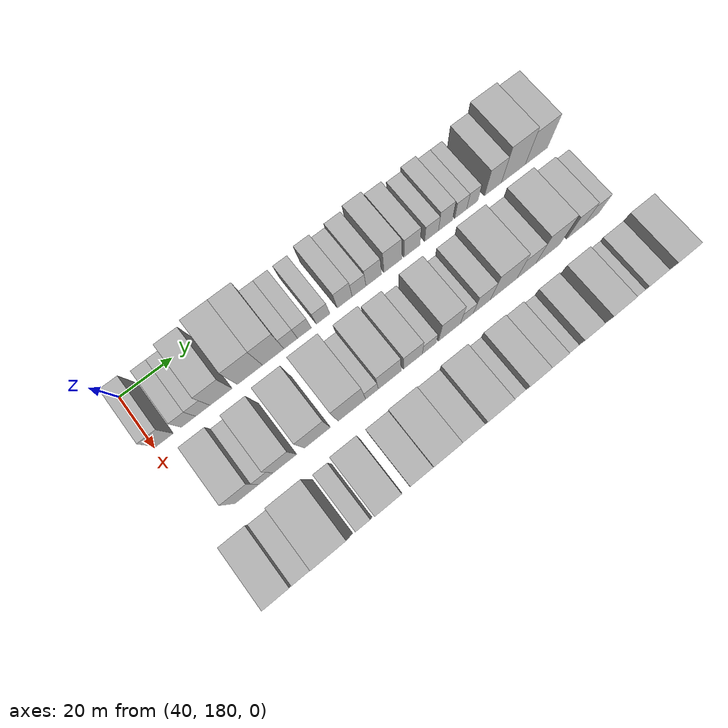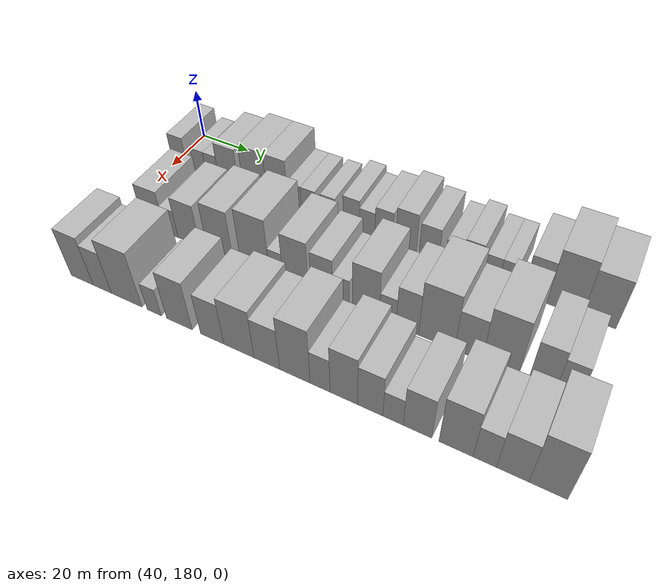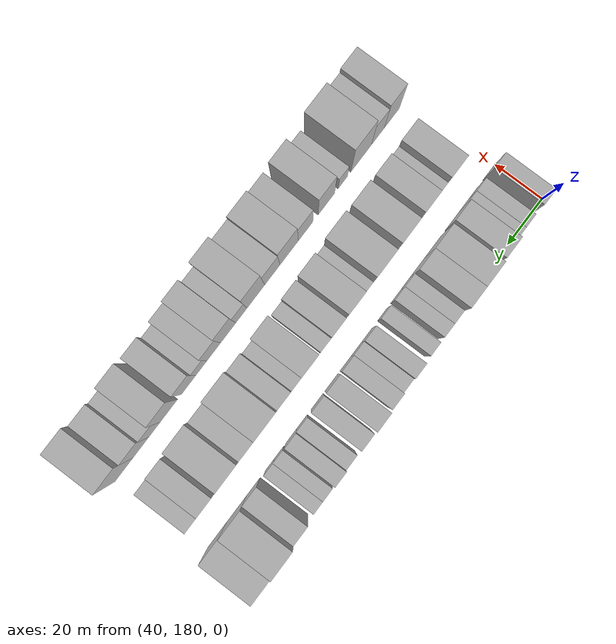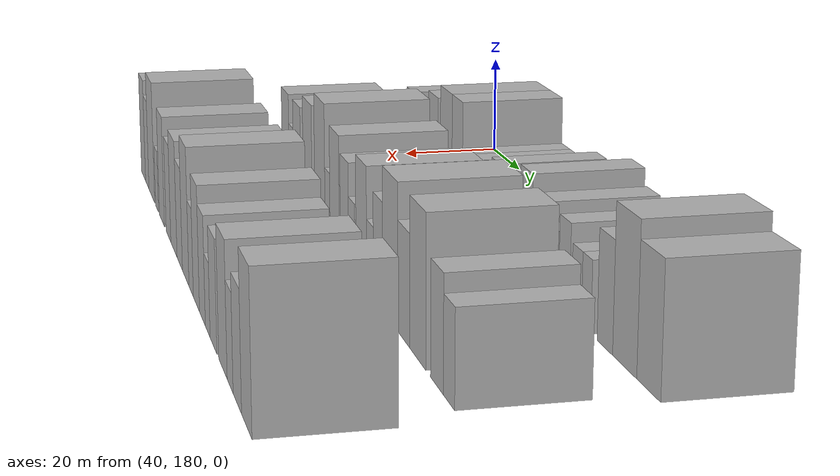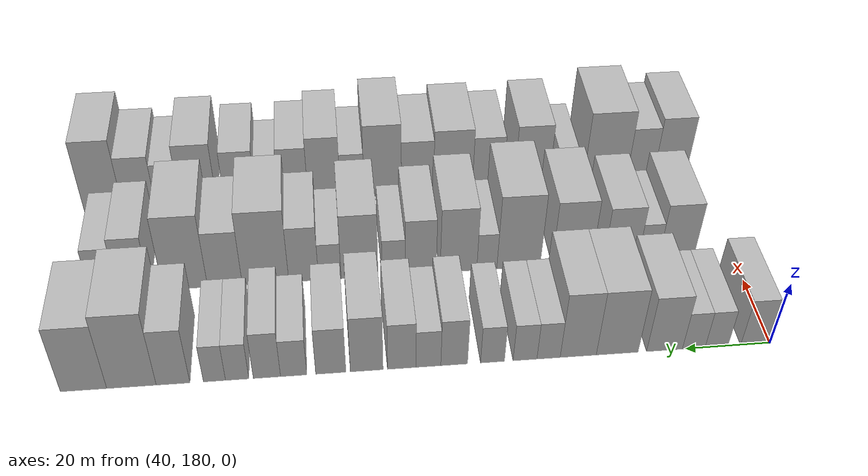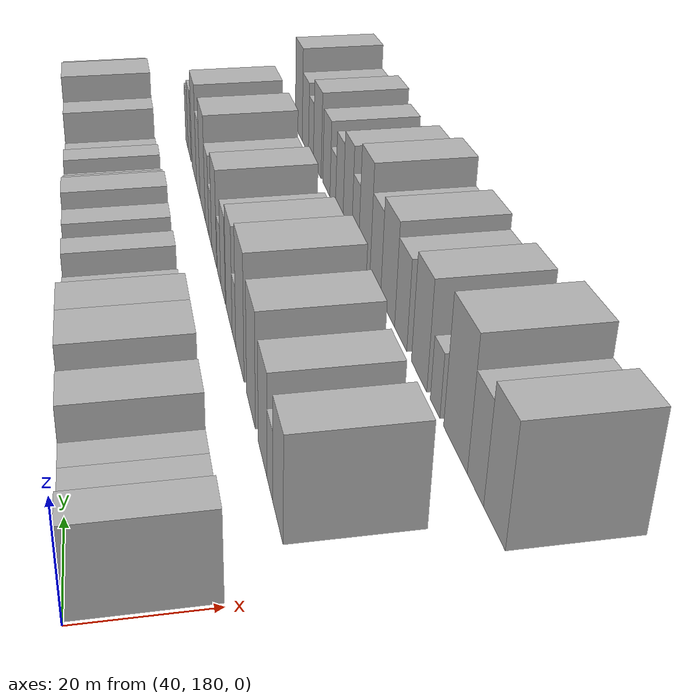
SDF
<sdf version="1.6">
 <world name="default">
  <model name="building_56">
   <static>1</static>
   <pose>50.0000 183.8379 0 0.000000 0.000000 0.000000</pose>
   <link name="link">
    <pose>0 0 7.50 0 0 0</pose>
    <collision name="collision"><geometry><box><size>20.0000 6.3838 15.0000</size></box></geometry></collision>
    <visual name="visual">
     <cast_shadows>0</cast_shadows>
     <geometry><box><size>20.0000 6.3838 15.0000</size></box></geometry>
     <material>
      <script>
       <uri>model://HANNAS_wall/materials/scripts</uri>
       <uri>model://HANNAS_wall/materials/textures</uri>
       <name>vrc/HANNAS_wall</name>
      </script>
     </material>
    </visual>
   </link>
  </model>
  <model name="building_57">
   <static>1</static>
   <pose>50.0000 192.7290 0 0.000000 0.000000 0.000000</pose>
   <link name="link">
    <pose>0 0 6.00 0 0 0</pose>
    <collision name="collision"><geometry><box><size>20.0000 5.3985 12.0000</size></box></geometry></collision>
    <visual name="visual">
     <cast_shadows>0</cast_shadows>
     <geometry><box><size>20.0000 5.3985 12.0000</size></box></geometry>
     <material>
      <script>
       <uri>model://HANNAS_wall/materials/scripts</uri>
       <uri>model://HANNAS_wall/materials/textures</uri>
       <name>vrc/HANNAS_wall</name>
      </script>
     </material>
    </visual>
   </link>
  </model>
  <model name="building_58">
   <static>1</static>
   <pose>50.0000 198.1115 0 0.000000 0.000000 0.000000</pose>
   <link name="link">
    <pose>0 0 6.00 0 0 0</pose>
    <collision name="collision"><geometry><box><size>20.0000 5.3664 12.0000</size></box></geometry></collision>
    <visual name="visual">
     <cast_shadows>0</cast_shadows>
     <geometry><box><size>20.0000 5.3664 12.0000</size></box></geometry>
     <material>
      <script>
       <uri>model://HANNAS_wall/materials/scripts</uri>
       <uri>model://HANNAS_wall/materials/textures</uri>
       <name>vrc/HANNAS_wall</name>
      </script>
     </material>
    </visual>
   </link>
  </model>
  <model name="building_59">
   <static>1</static>
   <pose>50.0000 205.0000 0 0.000000 0.000000 0.000000</pose>
   <link name="link">
    <pose>0 0 9.00 0 0 0</pose>
    <collision name="collision"><geometry><box><size>20.0000 8.4107 18.0000</size></box></geometry></collision>
    <visual name="visual">
     <cast_shadows>0</cast_shadows>
     <geometry><box><size>20.0000 8.4107 18.0000</size></box></geometry>
     <material>
      <script>
       <uri>model://HANNAS_wall/materials/scripts</uri>
       <uri>model://HANNAS_wall/materials/textures</uri>
       <name>vrc/HANNAS_wall</name>
      </script>
     </material>
    </visual>
   </link>
  </model>
  <model name="building_60">
   <static>1</static>
   <pose>50.0000 216.0947 0 0.000000 0.000000 0.000000</pose>
   <link name="link">
    <pose>0 0 10.50 0 0 0</pose>
    <collision name="collision"><geometry><box><size>20.0000 9.7789 21.0000</size></box></geometry></collision>
    <visual name="visual">
     <cast_shadows>0</cast_shadows>
     <geometry><box><size>20.0000 9.7789 21.0000</size></box></geometry>
     <material>
      <script>
       <uri>model://HANNAS_wall/materials/scripts</uri>
       <uri>model://HANNAS_wall/materials/textures</uri>
       <name>vrc/HANNAS_wall</name>
      </script>
     </material>
    </visual>
   </link>
  </model>
  <model name="building_61">
   <static>1</static>
   <pose>50.0000 225.1886 0 0.000000 0.000000 0.000000</pose>
   <link name="link">
    <pose>0 0 10.50 0 0 0</pose>
    <collision name="collision"><geometry><box><size>20.0000 8.4089 21.0000</size></box></geometry></collision>
    <visual name="visual">
     <cast_shadows>0</cast_shadows>
     <geometry><box><size>20.0000 8.4089 21.0000</size></box></geometry>
     <material>
      <script>
       <uri>model://HANNAS_wall/materials/scripts</uri>
       <uri>model://HANNAS_wall/materials/textures</uri>
       <name>vrc/HANNAS_wall</name>
      </script>
     </material>
    </visual>
   </link>
  </model>
  <model name="building_62">
   <static>1</static>
   <pose>50.0000 232.0882 0 0.000000 0.000000 0.000000</pose>
   <link name="link">
    <pose>0 0 6.00 0 0 0</pose>
    <collision name="collision"><geometry><box><size>20.0000 5.3902 12.0000</size></box></geometry></collision>
    <visual name="visual">
     <cast_shadows>0</cast_shadows>
     <geometry><box><size>20.0000 5.3902 12.0000</size></box></geometry>
     <material>
      <script>
       <uri>model://HANNAS_wall/materials/scripts</uri>
       <uri>model://HANNAS_wall/materials/textures</uri>
       <name>vrc/HANNAS_wall</name>
      </script>
     </material>
    </visual>
   </link>
  </model>
  <model name="building_63">
   <static>1</static>
   <pose>50.0000 237.5400 0 0.000000 0.000000 0.000000</pose>
   <link name="link">
    <pose>0 0 6.00 0 0 0</pose>
    <collision name="collision"><geometry><box><size>20.0000 5.5133 12.0000</size></box></geometry></collision>
    <visual name="visual">
     <cast_shadows>0</cast_shadows>
     <geometry><box><size>20.0000 5.5133 12.0000</size></box></geometry>
     <material>
      <script>
       <uri>model://HANNAS_wall/materials/scripts</uri>
       <uri>model://HANNAS_wall/materials/textures</uri>
       <name>vrc/HANNAS_wall</name>
      </script>
     </material>
    </visual>
   </link>
  </model>
  <model name="building_64">
   <static>1</static>
   <pose>50.0000 245.0487 0 0.000000 0.000000 0.000000</pose>
   <link name="link">
    <pose>0 0 6.00 0 0 0</pose>
    <collision name="collision"><geometry><box><size>20.0000 5.5042 12.0000</size></box></geometry></collision>
    <visual name="visual">
     <cast_shadows>0</cast_shadows>
     <geometry><box><size>20.0000 5.5042 12.0000</size></box></geometry>
     <material>
      <script>
       <uri>model://HANNAS_wall/materials/scripts</uri>
       <uri>model://HANNAS_wall/materials/textures</uri>
       <name>vrc/HANNAS_wall</name>
      </script>
     </material>
    </visual>
   </link>
  </model>
  <model name="building_65">
   <static>1</static>
   <pose>50.0000 253.8620 0 0.000000 0.000000 0.000000</pose>
   <link name="link">
    <pose>0 0 7.50 0 0 0</pose>
    <collision name="collision"><geometry><box><size>20.0000 6.1223 15.0000</size></box></geometry></collision>
    <visual name="visual">
     <cast_shadows>0</cast_shadows>
     <geometry><box><size>20.0000 6.1223 15.0000</size></box></geometry>
     <material>
      <script>
       <uri>model://HANNAS_wall/materials/scripts</uri>
       <uri>model://HANNAS_wall/materials/textures</uri>
       <name>vrc/HANNAS_wall</name>
      </script>
     </material>
    </visual>
   </link>
  </model>
  <model name="building_66">
   <static>1</static>
   <pose>50.0000 259.7737 0 0.000000 0.000000 0.000000</pose>
   <link name="link">
    <pose>0 0 6.00 0 0 0</pose>
    <collision name="collision"><geometry><box><size>20.0000 5.7011 12.0000</size></box></geometry></collision>
    <visual name="visual">
     <cast_shadows>0</cast_shadows>
     <geometry><box><size>20.0000 5.7011 12.0000</size></box></geometry>
     <material>
      <script>
       <uri>model://HANNAS_wall/materials/scripts</uri>
       <uri>model://HANNAS_wall/materials/textures</uri>
       <name>vrc/HANNAS_wall</name>
      </script>
     </material>
    </visual>
   </link>
  </model>
  <model name="building_67">
   <static>1</static>
   <pose>50.0000 265.8581 0 0.000000 0.000000 0.000000</pose>
   <link name="link">
    <pose>0 0 7.50 0 0 0</pose>
    <collision name="collision"><geometry><box><size>20.0000 6.4677 15.0000</size></box></geometry></collision>
    <visual name="visual">
     <cast_shadows>0</cast_shadows>
     <geometry><box><size>20.0000 6.4677 15.0000</size></box></geometry>
     <material>
      <script>
       <uri>model://HANNAS_wall/materials/scripts</uri>
       <uri>model://HANNAS_wall/materials/textures</uri>
       <name>vrc/HANNAS_wall</name>
      </script>
     </material>
    </visual>
   </link>
  </model>
  <model name="building_68">
   <static>1</static>
   <pose>50.0000 273.8118 0 0.000000 0.000000 0.000000</pose>
   <link name="link">
    <pose>0 0 9.00 0 0 0</pose>
    <collision name="collision"><geometry><box><size>20.0000 7.4396 18.0000</size></box></geometry></collision>
    <visual name="visual">
     <cast_shadows>0</cast_shadows>
     <geometry><box><size>20.0000 7.4396 18.0000</size></box></geometry>
     <material>
      <script>
       <uri>model://HANNAS_wall/materials/scripts</uri>
       <uri>model://HANNAS_wall/materials/textures</uri>
       <name>vrc/HANNAS_wall</name>
      </script>
     </material>
    </visual>
   </link>
  </model>
  <model name="building_69">
   <static>1</static>
   <pose>50.0000 281.9479 0 0.000000 0.000000 0.000000</pose>
   <link name="link">
    <pose>0 0 7.50 0 0 0</pose>
    <collision name="collision"><geometry><box><size>20.0000 6.8326 15.0000</size></box></geometry></collision>
    <visual name="visual">
     <cast_shadows>0</cast_shadows>
     <geometry><box><size>20.0000 6.8326 15.0000</size></box></geometry>
     <material>
      <script>
       <uri>model://HANNAS_wall/materials/scripts</uri>
       <uri>model://HANNAS_wall/materials/textures</uri>
       <name>vrc/HANNAS_wall</name>
      </script>
     </material>
    </visual>
   </link>
  </model>
  <model name="building_70">
   <static>1</static>
   <pose>50.0000 290.3290 0 0.000000 0.000000 0.000000</pose>
   <link name="link">
    <pose>0 0 6.00 0 0 0</pose>
    <collision name="collision"><geometry><box><size>20.0000 5.9297 12.0000</size></box></geometry></collision>
    <visual name="visual">
     <cast_shadows>0</cast_shadows>
     <geometry><box><size>20.0000 5.9297 12.0000</size></box></geometry>
     <material>
      <script>
       <uri>model://HANNAS_wall/materials/scripts</uri>
       <uri>model://HANNAS_wall/materials/textures</uri>
       <name>vrc/HANNAS_wall</name>
      </script>
     </material>
    </visual>
   </link>
  </model>
  <model name="building_71">
   <static>1</static>
   <pose>50.0000 296.3519 0 0.000000 0.000000 0.000000</pose>
   <link name="link">
    <pose>0 0 7.50 0 0 0</pose>
    <collision name="collision"><geometry><box><size>20.0000 6.1161 15.0000</size></box></geometry></collision>
    <visual name="visual">
     <cast_shadows>0</cast_shadows>
     <geometry><box><size>20.0000 6.1161 15.0000</size></box></geometry>
     <material>
      <script>
       <uri>model://HANNAS_wall/materials/scripts</uri>
       <uri>model://HANNAS_wall/materials/textures</uri>
       <name>vrc/HANNAS_wall</name>
      </script>
     </material>
    </visual>
   </link>
  </model>
  <model name="building_72">
   <static>1</static>
   <pose>50.0000 303.0239 0 0.000000 0.000000 0.000000</pose>
   <link name="link">
    <pose>0 0 6.00 0 0 0</pose>
    <collision name="collision"><geometry><box><size>20.0000 5.2278 12.0000</size></box></geometry></collision>
    <visual name="visual">
     <cast_shadows>0</cast_shadows>
     <geometry><box><size>20.0000 5.2278 12.0000</size></box></geometry>
     <material>
      <script>
       <uri>model://HANNAS_wall/materials/scripts</uri>
       <uri>model://HANNAS_wall/materials/textures</uri>
       <name>vrc/HANNAS_wall</name>
      </script>
     </material>
    </visual>
   </link>
  </model>
  <model name="building_73">
   <static>1</static>
   <pose>50.0000 308.1065 0 0.000000 0.000000 0.000000</pose>
   <link name="link">
    <pose>0 0 6.00 0 0 0</pose>
    <collision name="collision"><geometry><box><size>20.0000 4.9374 12.0000</size></box></geometry></collision>
    <visual name="visual">
     <cast_shadows>0</cast_shadows>
     <geometry><box><size>20.0000 4.9374 12.0000</size></box></geometry>
     <material>
      <script>
       <uri>model://HANNAS_wall/materials/scripts</uri>
       <uri>model://HANNAS_wall/materials/textures</uri>
       <name>vrc/HANNAS_wall</name>
      </script>
     </material>
    </visual>
   </link>
  </model>
  <model name="building_74">
   <static>1</static>
   <pose>50.0000 317.3158 0 0.000000 0.000000 0.000000</pose>
   <link name="link">
    <pose>0 0 9.00 0 0 0</pose>
    <collision name="collision"><geometry><box><size>20.0000 7.4814 18.0000</size></box></geometry></collision>
    <visual name="visual">
     <cast_shadows>0</cast_shadows>
     <geometry><box><size>20.0000 7.4814 18.0000</size></box></geometry>
     <material>
      <script>
       <uri>model://HANNAS_wall/materials/scripts</uri>
       <uri>model://HANNAS_wall/materials/textures</uri>
       <name>vrc/HANNAS_wall</name>
      </script>
     </material>
    </visual>
   </link>
  </model>
  <model name="building_75">
   <static>1</static>
   <pose>50.0000 326.5363 0 0.000000 0.000000 0.000000</pose>
   <link name="link">
    <pose>0 0 12.00 0 0 0</pose>
    <collision name="collision"><geometry><box><size>20.0000 10.9596 24.0000</size></box></geometry></collision>
    <visual name="visual">
     <cast_shadows>0</cast_shadows>
     <geometry><box><size>20.0000 10.9596 24.0000</size></box></geometry>
     <material>
      <script>
       <uri>model://HANNAS_wall/materials/scripts</uri>
       <uri>model://HANNAS_wall/materials/textures</uri>
       <name>vrc/HANNAS_wall</name>
      </script>
     </material>
    </visual>
   </link>
  </model>
  <model name="building_76">
   <static>1</static>
   <pose>50.0000 337.1239 0 0.000000 0.000000 0.000000</pose>
   <link name="link">
    <pose>0 0 10.50 0 0 0</pose>
    <collision name="collision"><geometry><box><size>20.0000 10.2155 21.0000</size></box></geometry></collision>
    <visual name="visual">
     <cast_shadows>0</cast_shadows>
     <geometry><box><size>20.0000 10.2155 21.0000</size></box></geometry>
     <material>
      <script>
       <uri>model://HANNAS_wall/materials/scripts</uri>
       <uri>model://HANNAS_wall/materials/textures</uri>
       <name>vrc/HANNAS_wall</name>
      </script>
     </material>
    </visual>
   </link>
  </model>
  <model name="building_135">
   <static>1</static>
   <pose>79.0000 194.3742 0 0.000000 0.000000 0.000000</pose>
   <link name="link">
    <pose>0 0 9.00 0 0 0</pose>
    <collision name="collision"><geometry><box><size>20.0000 8.9700 18.0000</size></box></geometry></collision>
    <visual name="visual">
     <cast_shadows>0</cast_shadows>
     <geometry><box><size>20.0000 8.9700 18.0000</size></box></geometry>
     <material>
      <script>
       <uri>model://HANNAS_wall/materials/scripts</uri>
       <uri>model://HANNAS_wall/materials/textures</uri>
       <name>vrc/HANNAS_wall</name>
      </script>
     </material>
    </visual>
   </link>
  </model>
  <model name="building_136">
   <static>1</static>
   <pose>79.0000 201.5016 0 0.000000 0.000000 0.000000</pose>
   <link name="link">
    <pose>0 0 6.00 0 0 0</pose>
    <collision name="collision"><geometry><box><size>20.0000 5.2846 12.0000</size></box></geometry></collision>
    <visual name="visual">
     <cast_shadows>0</cast_shadows>
     <geometry><box><size>20.0000 5.2846 12.0000</size></box></geometry>
     <material>
      <script>
       <uri>model://HANNAS_wall/materials/scripts</uri>
       <uri>model://HANNAS_wall/materials/textures</uri>
       <name>vrc/HANNAS_wall</name>
      </script>
     </material>
    </visual>
   </link>
  </model>
  <model name="building_137">
   <static>1</static>
   <pose>79.0000 208.5184 0 0.000000 0.000000 0.000000</pose>
   <link name="link">
    <pose>0 0 9.00 0 0 0</pose>
    <collision name="collision"><geometry><box><size>20.0000 8.7491 18.0000</size></box></geometry></collision>
    <visual name="visual">
     <cast_shadows>0</cast_shadows>
     <geometry><box><size>20.0000 8.7491 18.0000</size></box></geometry>
     <material>
      <script>
       <uri>model://HANNAS_wall/materials/scripts</uri>
       <uri>model://HANNAS_wall/materials/textures</uri>
       <name>vrc/HANNAS_wall</name>
      </script>
     </material>
    </visual>
   </link>
  </model>
  <model name="building_138">
   <static>1</static>
   <pose>79.0000 220.8992 0 0.000000 0.000000 0.000000</pose>
   <link name="link">
    <pose>0 0 10.50 0 0 0</pose>
    <collision name="collision"><geometry><box><size>20.0000 10.0125 21.0000</size></box></geometry></collision>
    <visual name="visual">
     <cast_shadows>0</cast_shadows>
     <geometry><box><size>20.0000 10.0125 21.0000</size></box></geometry>
     <material>
      <script>
       <uri>model://HANNAS_wall/materials/scripts</uri>
       <uri>model://HANNAS_wall/materials/textures</uri>
       <name>vrc/HANNAS_wall</name>
      </script>
     </material>
    </visual>
   </link>
  </model>
  <model name="building_139">
   <static>1</static>
   <pose>79.0000 234.3258 0 0.000000 0.000000 0.000000</pose>
   <link name="link">
    <pose>0 0 12.00 0 0 0</pose>
    <collision name="collision"><geometry><box><size>20.0000 10.8407 24.0000</size></box></geometry></collision>
    <visual name="visual">
     <cast_shadows>0</cast_shadows>
     <geometry><box><size>20.0000 10.8407 24.0000</size></box></geometry>
     <material>
      <script>
       <uri>model://HANNAS_wall/materials/scripts</uri>
       <uri>model://HANNAS_wall/materials/textures</uri>
       <name>vrc/HANNAS_wall</name>
      </script>
     </material>
    </visual>
   </link>
  </model>
  <model name="building_140">
   <static>1</static>
   <pose>79.0000 242.2522 0 0.000000 0.000000 0.000000</pose>
   <link name="link">
    <pose>0 0 6.00 0 0 0</pose>
    <collision name="collision"><geometry><box><size>20.0000 5.0121 12.0000</size></box></geometry></collision>
    <visual name="visual">
     <cast_shadows>0</cast_shadows>
     <geometry><box><size>20.0000 5.0121 12.0000</size></box></geometry>
     <material>
      <script>
       <uri>model://HANNAS_wall/materials/scripts</uri>
       <uri>model://HANNAS_wall/materials/textures</uri>
       <name>vrc/HANNAS_wall</name>
      </script>
     </material>
    </visual>
   </link>
  </model>
  <model name="building_141">
   <static>1</static>
   <pose>79.0000 249.3092 0 0.000000 0.000000 0.000000</pose>
   <link name="link">
    <pose>0 0 10.50 0 0 0</pose>
    <collision name="collision"><geometry><box><size>20.0000 9.1017 21.0000</size></box></geometry></collision>
    <visual name="visual">
     <cast_shadows>0</cast_shadows>
     <geometry><box><size>20.0000 9.1017 21.0000</size></box></geometry>
     <material>
      <script>
       <uri>model://HANNAS_wall/materials/scripts</uri>
       <uri>model://HANNAS_wall/materials/textures</uri>
       <name>vrc/HANNAS_wall</name>
      </script>
     </material>
    </visual>
   </link>
  </model>
  <model name="building_142">
   <static>1</static>
   <pose>79.0000 258.7050 0 0.000000 0.000000 0.000000</pose>
   <link name="link">
    <pose>0 0 9.00 0 0 0</pose>
    <collision name="collision"><geometry><box><size>20.0000 7.6900 18.0000</size></box></geometry></collision>
    <visual name="visual">
     <cast_shadows>0</cast_shadows>
     <geometry><box><size>20.0000 7.6900 18.0000</size></box></geometry>
     <material>
      <script>
       <uri>model://HANNAS_wall/materials/scripts</uri>
       <uri>model://HANNAS_wall/materials/textures</uri>
       <name>vrc/HANNAS_wall</name>
      </script>
     </material>
    </visual>
   </link>
  </model>
  <model name="building_143">
   <static>1</static>
   <pose>79.0000 265.3962 0 0.000000 0.000000 0.000000</pose>
   <link name="link">
    <pose>0 0 6.00 0 0 0</pose>
    <collision name="collision"><geometry><box><size>20.0000 5.6924 12.0000</size></box></geometry></collision>
    <visual name="visual">
     <cast_shadows>0</cast_shadows>
     <geometry><box><size>20.0000 5.6924 12.0000</size></box></geometry>
     <material>
      <script>
       <uri>model://HANNAS_wall/materials/scripts</uri>
       <uri>model://HANNAS_wall/materials/textures</uri>
       <name>vrc/HANNAS_wall</name>
      </script>
     </material>
    </visual>
   </link>
  </model>
  <model name="building_144">
   <static>1</static>
   <pose>79.0000 273.7882 0 0.000000 0.000000 0.000000</pose>
   <link name="link">
    <pose>0 0 10.50 0 0 0</pose>
    <collision name="collision"><geometry><box><size>20.0000 9.0915 21.0000</size></box></geometry></collision>
    <visual name="visual">
     <cast_shadows>0</cast_shadows>
     <geometry><box><size>20.0000 9.0915 21.0000</size></box></geometry>
     <material>
      <script>
       <uri>model://HANNAS_wall/materials/scripts</uri>
       <uri>model://HANNAS_wall/materials/textures</uri>
       <name>vrc/HANNAS_wall</name>
      </script>
     </material>
    </visual>
   </link>
  </model>
  <model name="building_145">
   <static>1</static>
   <pose>79.0000 281.0930 0 0.000000 0.000000 0.000000</pose>
   <link name="link">
    <pose>0 0 6.00 0 0 0</pose>
    <collision name="collision"><geometry><box><size>20.0000 5.5181 12.0000</size></box></geometry></collision>
    <visual name="visual">
     <cast_shadows>0</cast_shadows>
     <geometry><box><size>20.0000 5.5181 12.0000</size></box></geometry>
     <material>
      <script>
       <uri>model://HANNAS_wall/materials/scripts</uri>
       <uri>model://HANNAS_wall/materials/textures</uri>
       <name>vrc/HANNAS_wall</name>
      </script>
     </material>
    </visual>
   </link>
  </model>
  <model name="building_146">
   <static>1</static>
   <pose>79.0000 287.4876 0 0.000000 0.000000 0.000000</pose>
   <link name="link">
    <pose>0 0 9.00 0 0 0</pose>
    <collision name="collision"><geometry><box><size>20.0000 7.2711 18.0000</size></box></geometry></collision>
    <visual name="visual">
     <cast_shadows>0</cast_shadows>
     <geometry><box><size>20.0000 7.2711 18.0000</size></box></geometry>
     <material>
      <script>
       <uri>model://HANNAS_wall/materials/scripts</uri>
       <uri>model://HANNAS_wall/materials/textures</uri>
       <name>vrc/HANNAS_wall</name>
      </script>
     </material>
    </visual>
   </link>
  </model>
  <model name="building_147">
   <static>1</static>
   <pose>79.0000 296.7941 0 0.000000 0.000000 0.000000</pose>
   <link name="link">
    <pose>0 0 12.00 0 0 0</pose>
    <collision name="collision"><geometry><box><size>20.0000 11.3418 24.0000</size></box></geometry></collision>
    <visual name="visual">
     <cast_shadows>0</cast_shadows>
     <geometry><box><size>20.0000 11.3418 24.0000</size></box></geometry>
     <material>
      <script>
       <uri>model://HANNAS_wall/materials/scripts</uri>
       <uri>model://HANNAS_wall/materials/textures</uri>
       <name>vrc/HANNAS_wall</name>
      </script>
     </material>
    </visual>
   </link>
  </model>
  <model name="building_148">
   <static>1</static>
   <pose>79.0000 306.6608 0 0.000000 0.000000 0.000000</pose>
   <link name="link">
    <pose>0 0 9.00 0 0 0</pose>
    <collision name="collision"><geometry><box><size>20.0000 8.3916 18.0000</size></box></geometry></collision>
    <visual name="visual">
     <cast_shadows>0</cast_shadows>
     <geometry><box><size>20.0000 8.3916 18.0000</size></box></geometry>
     <material>
      <script>
       <uri>model://HANNAS_wall/materials/scripts</uri>
       <uri>model://HANNAS_wall/materials/textures</uri>
       <name>vrc/HANNAS_wall</name>
      </script>
     </material>
    </visual>
   </link>
  </model>
  <model name="building_149">
   <static>1</static>
   <pose>79.0000 316.2503 0 0.000000 0.000000 0.000000</pose>
   <link name="link">
    <pose>0 0 12.00 0 0 0</pose>
    <collision name="collision"><geometry><box><size>20.0000 10.7874 24.0000</size></box></geometry></collision>
    <visual name="visual">
     <cast_shadows>0</cast_shadows>
     <geometry><box><size>20.0000 10.7874 24.0000</size></box></geometry>
     <material>
      <script>
       <uri>model://HANNAS_wall/materials/scripts</uri>
       <uri>model://HANNAS_wall/materials/textures</uri>
       <name>vrc/HANNAS_wall</name>
      </script>
     </material>
    </visual>
   </link>
  </model>
  <model name="building_150">
   <static>1</static>
   <pose>79.0000 328.5423 0 0.000000 0.000000 0.000000</pose>
   <link name="link">
    <pose>0 0 9.00 0 0 0</pose>
    <collision name="collision"><geometry><box><size>20.0000 7.7966 18.0000</size></box></geometry></collision>
    <visual name="visual">
     <cast_shadows>0</cast_shadows>
     <geometry><box><size>20.0000 7.7966 18.0000</size></box></geometry>
     <material>
      <script>
       <uri>model://HANNAS_wall/materials/scripts</uri>
       <uri>model://HANNAS_wall/materials/textures</uri>
       <name>vrc/HANNAS_wall</name>
      </script>
     </material>
    </visual>
   </link>
  </model>
  <model name="building_151">
   <static>1</static>
   <pose>79.0000 335.7714 0 0.000000 0.000000 0.000000</pose>
   <link name="link">
    <pose>0 0 7.50 0 0 0</pose>
    <collision name="collision"><geometry><box><size>20.0000 6.6616 15.0000</size></box></geometry></collision>
    <visual name="visual">
     <cast_shadows>0</cast_shadows>
     <geometry><box><size>20.0000 6.6616 15.0000</size></box></geometry>
     <material>
      <script>
       <uri>model://HANNAS_wall/materials/scripts</uri>
       <uri>model://HANNAS_wall/materials/textures</uri>
       <name>vrc/HANNAS_wall</name>
      </script>
     </material>
    </visual>
   </link>
  </model>
  <model name="building_208">
   <static>1</static>
   <pose>108.0000 188.5669 0 0.000000 0.000000 0.000000</pose>
   <link name="link">
    <pose>0 0 10.50 0 0 0</pose>
    <collision name="collision"><geometry><box><size>20.0000 8.9162 21.0000</size></box></geometry></collision>
    <visual name="visual">
     <cast_shadows>0</cast_shadows>
     <geometry><box><size>20.0000 8.9162 21.0000</size></box></geometry>
     <material>
      <script>
       <uri>model://HANNAS_wall/materials/scripts</uri>
       <uri>model://HANNAS_wall/materials/textures</uri>
       <name>vrc/HANNAS_wall</name>
      </script>
     </material>
    </visual>
   </link>
  </model>
  <model name="building_209">
   <static>1</static>
   <pose>108.0000 196.6693 0 0.000000 0.000000 0.000000</pose>
   <link name="link">
    <pose>0 0 9.00 0 0 0</pose>
    <collision name="collision"><geometry><box><size>20.0000 7.2886 18.0000</size></box></geometry></collision>
    <visual name="visual">
     <cast_shadows>0</cast_shadows>
     <geometry><box><size>20.0000 7.2886 18.0000</size></box></geometry>
     <material>
      <script>
       <uri>model://HANNAS_wall/materials/scripts</uri>
       <uri>model://HANNAS_wall/materials/textures</uri>
       <name>vrc/HANNAS_wall</name>
      </script>
     </material>
    </visual>
   </link>
  </model>
  <model name="building_210">
   <static>1</static>
   <pose>108.0000 206.2132 0 0.000000 0.000000 0.000000</pose>
   <link name="link">
    <pose>0 0 12.00 0 0 0</pose>
    <collision name="collision"><geometry><box><size>20.0000 11.7991 24.0000</size></box></geometry></collision>
    <visual name="visual">
     <cast_shadows>0</cast_shadows>
     <geometry><box><size>20.0000 11.7991 24.0000</size></box></geometry>
     <material>
      <script>
       <uri>model://HANNAS_wall/materials/scripts</uri>
       <uri>model://HANNAS_wall/materials/textures</uri>
       <name>vrc/HANNAS_wall</name>
      </script>
     </material>
    </visual>
   </link>
  </model>
  <model name="building_211">
   <static>1</static>
   <pose>108.0000 216.7731 0 0.000000 0.000000 0.000000</pose>
   <link name="link">
    <pose>0 0 6.00 0 0 0</pose>
    <collision name="collision"><geometry><box><size>20.0000 5.3208 12.0000</size></box></geometry></collision>
    <visual name="visual">
     <cast_shadows>0</cast_shadows>
     <geometry><box><size>20.0000 5.3208 12.0000</size></box></geometry>
     <material>
      <script>
       <uri>model://HANNAS_wall/materials/scripts</uri>
       <uri>model://HANNAS_wall/materials/textures</uri>
       <name>vrc/HANNAS_wall</name>
      </script>
     </material>
    </visual>
   </link>
  </model>
  <model name="building_212">
   <static>1</static>
   <pose>108.0000 226.1177 0 0.000000 0.000000 0.000000</pose>
   <link name="link">
    <pose>0 0 10.50 0 0 0</pose>
    <collision name="collision"><geometry><box><size>20.0000 9.3685 21.0000</size></box></geometry></collision>
    <visual name="visual">
     <cast_shadows>0</cast_shadows>
     <geometry><box><size>20.0000 9.3685 21.0000</size></box></geometry>
     <material>
      <script>
       <uri>model://HANNAS_wall/materials/scripts</uri>
       <uri>model://HANNAS_wall/materials/textures</uri>
       <name>vrc/HANNAS_wall</name>
      </script>
     </material>
    </visual>
   </link>
  </model>
  <model name="building_213">
   <static>1</static>
   <pose>108.0000 237.9356 0 0.000000 0.000000 0.000000</pose>
   <link name="link">
    <pose>0 0 9.00 0 0 0</pose>
    <collision name="collision"><geometry><box><size>20.0000 8.2673 18.0000</size></box></geometry></collision>
    <visual name="visual">
     <cast_shadows>0</cast_shadows>
     <geometry><box><size>20.0000 8.2673 18.0000</size></box></geometry>
     <material>
      <script>
       <uri>model://HANNAS_wall/materials/scripts</uri>
       <uri>model://HANNAS_wall/materials/textures</uri>
       <name>vrc/HANNAS_wall</name>
      </script>
     </material>
    </visual>
   </link>
  </model>
  <model name="building_214">
   <static>1</static>
   <pose>108.0000 247.2629 0 0.000000 0.000000 0.000000</pose>
   <link name="link">
    <pose>0 0 10.50 0 0 0</pose>
    <collision name="collision"><geometry><box><size>20.0000 10.3873 21.0000</size></box></geometry></collision>
    <visual name="visual">
     <cast_shadows>0</cast_shadows>
     <geometry><box><size>20.0000 10.3873 21.0000</size></box></geometry>
     <material>
      <script>
       <uri>model://HANNAS_wall/materials/scripts</uri>
       <uri>model://HANNAS_wall/materials/textures</uri>
       <name>vrc/HANNAS_wall</name>
      </script>
     </material>
    </visual>
   </link>
  </model>
  <model name="building_215">
   <static>1</static>
   <pose>108.0000 256.7404 0 0.000000 0.000000 0.000000</pose>
   <link name="link">
    <pose>0 0 9.00 0 0 0</pose>
    <collision name="collision"><geometry><box><size>20.0000 8.5677 18.0000</size></box></geometry></collision>
    <visual name="visual">
     <cast_shadows>0</cast_shadows>
     <geometry><box><size>20.0000 8.5677 18.0000</size></box></geometry>
     <material>
      <script>
       <uri>model://HANNAS_wall/materials/scripts</uri>
       <uri>model://HANNAS_wall/materials/textures</uri>
       <name>vrc/HANNAS_wall</name>
      </script>
     </material>
    </visual>
   </link>
  </model>
  <model name="building_216">
   <static>1</static>
   <pose>108.0000 265.9784 0 0.000000 0.000000 0.000000</pose>
   <link name="link">
    <pose>0 0 12.00 0 0 0</pose>
    <collision name="collision"><geometry><box><size>20.0000 9.9082 24.0000</size></box></geometry></collision>
    <visual name="visual">
     <cast_shadows>0</cast_shadows>
     <geometry><box><size>20.0000 9.9082 24.0000</size></box></geometry>
     <material>
      <script>
       <uri>model://HANNAS_wall/materials/scripts</uri>
       <uri>model://HANNAS_wall/materials/textures</uri>
       <name>vrc/HANNAS_wall</name>
      </script>
     </material>
    </visual>
   </link>
  </model>
  <model name="building_217">
   <static>1</static>
   <pose>108.0000 274.0642 0 0.000000 0.000000 0.000000</pose>
   <link name="link">
    <pose>0 0 7.50 0 0 0</pose>
    <collision name="collision"><geometry><box><size>20.0000 6.2635 15.0000</size></box></geometry></collision>
    <visual name="visual">
     <cast_shadows>0</cast_shadows>
     <geometry><box><size>20.0000 6.2635 15.0000</size></box></geometry>
     <material>
      <script>
       <uri>model://HANNAS_wall/materials/scripts</uri>
       <uri>model://HANNAS_wall/materials/textures</uri>
       <name>vrc/HANNAS_wall</name>
      </script>
     </material>
    </visual>
   </link>
  </model>
  <model name="building_218">
   <static>1</static>
   <pose>108.0000 281.4474 0 0.000000 0.000000 0.000000</pose>
   <link name="link">
    <pose>0 0 10.50 0 0 0</pose>
    <collision name="collision"><geometry><box><size>20.0000 8.5029 21.0000</size></box></geometry></collision>
    <visual name="visual">
     <cast_shadows>0</cast_shadows>
     <geometry><box><size>20.0000 8.5029 21.0000</size></box></geometry>
     <material>
      <script>
       <uri>model://HANNAS_wall/materials/scripts</uri>
       <uri>model://HANNAS_wall/materials/textures</uri>
       <name>vrc/HANNAS_wall</name>
      </script>
     </material>
    </visual>
   </link>
  </model>
  <model name="building_219">
   <static>1</static>
   <pose>108.0000 289.5241 0 0.000000 0.000000 0.000000</pose>
   <link name="link">
    <pose>0 0 9.00 0 0 0</pose>
    <collision name="collision"><geometry><box><size>20.0000 7.6504 18.0000</size></box></geometry></collision>
    <visual name="visual">
     <cast_shadows>0</cast_shadows>
     <geometry><box><size>20.0000 7.6504 18.0000</size></box></geometry>
     <material>
      <script>
       <uri>model://HANNAS_wall/materials/scripts</uri>
       <uri>model://HANNAS_wall/materials/textures</uri>
       <name>vrc/HANNAS_wall</name>
      </script>
     </material>
    </visual>
   </link>
  </model>
  <model name="building_220">
   <static>1</static>
   <pose>108.0000 296.3444 0 0.000000 0.000000 0.000000</pose>
   <link name="link">
    <pose>0 0 6.00 0 0 0</pose>
    <collision name="collision"><geometry><box><size>20.0000 5.9902 12.0000</size></box></geometry></collision>
    <visual name="visual">
     <cast_shadows>0</cast_shadows>
     <geometry><box><size>20.0000 5.9902 12.0000</size></box></geometry>
     <material>
      <script>
       <uri>model://HANNAS_wall/materials/scripts</uri>
       <uri>model://HANNAS_wall/materials/textures</uri>
       <name>vrc/HANNAS_wall</name>
      </script>
     </material>
    </visual>
   </link>
  </model>
  <model name="building_221">
   <static>1</static>
   <pose>108.0000 303.4684 0 0.000000 0.000000 0.000000</pose>
   <link name="link">
    <pose>0 0 9.00 0 0 0</pose>
    <collision name="collision"><geometry><box><size>20.0000 8.2579 18.0000</size></box></geometry></collision>
    <visual name="visual">
     <cast_shadows>0</cast_shadows>
     <geometry><box><size>20.0000 8.2579 18.0000</size></box></geometry>
     <material>
      <script>
       <uri>model://HANNAS_wall/materials/scripts</uri>
       <uri>model://HANNAS_wall/materials/textures</uri>
       <name>vrc/HANNAS_wall</name>
      </script>
     </material>
    </visual>
   </link>
  </model>
  <model name="building_222">
   <static>1</static>
   <pose>108.0000 314.3503 0 0.000000 0.000000 0.000000</pose>
   <link name="link">
    <pose>0 0 10.50 0 0 0</pose>
    <collision name="collision"><geometry><box><size>20.0000 9.5059 21.0000</size></box></geometry></collision>
    <visual name="visual">
     <cast_shadows>0</cast_shadows>
     <geometry><box><size>20.0000 9.5059 21.0000</size></box></geometry>
     <material>
      <script>
       <uri>model://HANNAS_wall/materials/scripts</uri>
       <uri>model://HANNAS_wall/materials/textures</uri>
       <name>vrc/HANNAS_wall</name>
      </script>
     </material>
    </visual>
   </link>
  </model>
  <model name="building_223">
   <static>1</static>
   <pose>108.0000 322.2815 0 0.000000 0.000000 0.000000</pose>
   <link name="link">
    <pose>0 0 7.50 0 0 0</pose>
    <collision name="collision"><geometry><box><size>20.0000 6.3565 15.0000</size></box></geometry></collision>
    <visual name="visual">
     <cast_shadows>0</cast_shadows>
     <geometry><box><size>20.0000 6.3565 15.0000</size></box></geometry>
     <material>
      <script>
       <uri>model://HANNAS_wall/materials/scripts</uri>
       <uri>model://HANNAS_wall/materials/textures</uri>
       <name>vrc/HANNAS_wall</name>
      </script>
     </material>
    </visual>
   </link>
  </model>
  <model name="building_224">
   <static>1</static>
   <pose>108.0000 329.7286 0 0.000000 0.000000 0.000000</pose>
   <link name="link">
    <pose>0 0 9.00 0 0 0</pose>
    <collision name="collision"><geometry><box><size>20.0000 8.5377 18.0000</size></box></geometry></collision>
    <visual name="visual">
     <cast_shadows>0</cast_shadows>
     <geometry><box><size>20.0000 8.5377 18.0000</size></box></geometry>
     <material>
      <script>
       <uri>model://HANNAS_wall/materials/scripts</uri>
       <uri>model://HANNAS_wall/materials/textures</uri>
       <name>vrc/HANNAS_wall</name>
      </script>
     </material>
    </visual>
   </link>
  </model>
  <model name="building_225">
   <static>1</static>
   <pose>108.0000 338.9630 0 0.000000 0.000000 0.000000</pose>
   <link name="link">
    <pose>0 0 12.00 0 0 0</pose>
    <collision name="collision"><geometry><box><size>20.0000 9.9311 24.0000</size></box></geometry></collision>
    <visual name="visual">
     <cast_shadows>0</cast_shadows>
     <geometry><box><size>20.0000 9.9311 24.0000</size></box></geometry>
     <material>
      <script>
       <uri>model://HANNAS_wall/materials/scripts</uri>
       <uri>model://HANNAS_wall/materials/textures</uri>
       <name>vrc/HANNAS_wall</name>
      </script>
     </material>
    </visual>
   </link>
  </model>
 </world>
</sdf>
